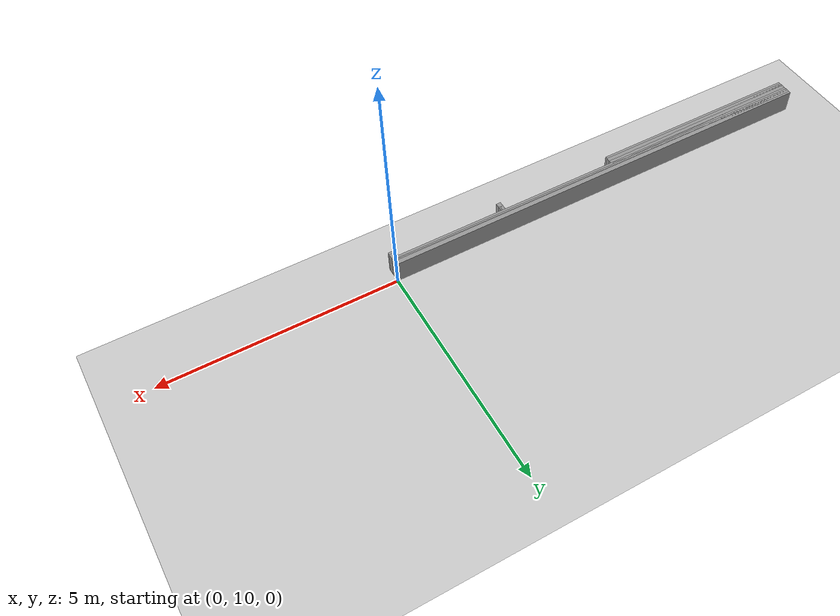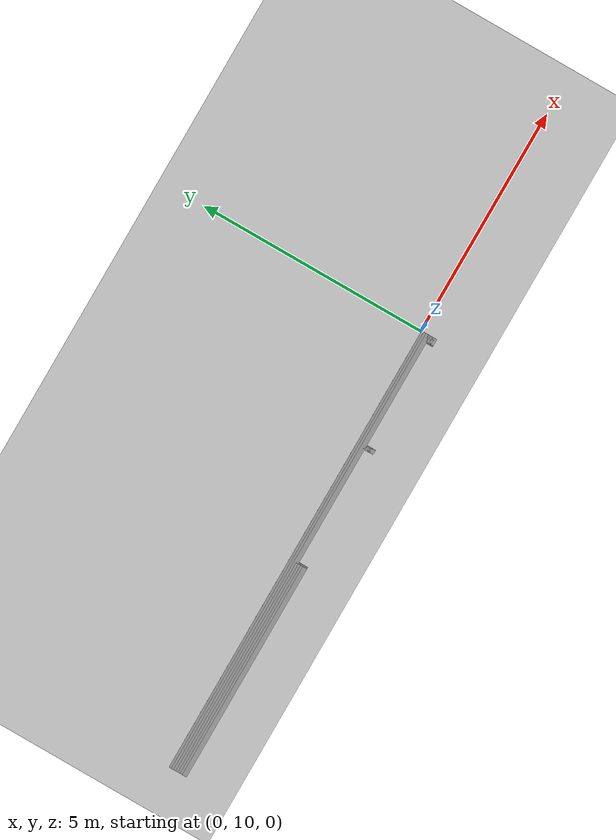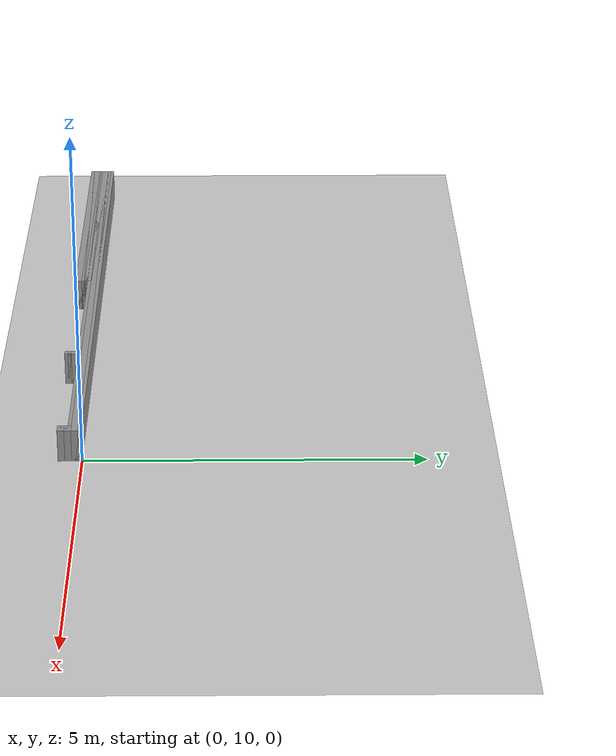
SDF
<sdf version="1.6">
 <world name="GridMap">
  <include><uri>model://sun</uri></include>
  <include><uri>model://ground_plane</uri></include>
  <model name="GridMap">
   <link name="Wall_(51.0,193.0)">
    <collision name="Wall_(51.0,193.0)_Collision">
     <geometry><box><size>0.1 0.1 0.5</size></box></geometry>
     <pose>-2.5500000000000003 9.65 0.25 0 -0 0</pose>
    </collision>
    <inertial>
     <mass>0.5</mass>
     <pose>0 0.01 0 0 0 0</pose>
     <inertia><ixx>0.004</ixx><ixy>0.001</ixy><ixz>0</ixz><iyy>0.006</iyy><iyz>0</iyz><izz>0.007</izz></inertia>
    </inertial>
    <visual name="Wall_(51.0,193.0)_Visual">
     <geometry><box><size>0.1 0.1 0.5</size></box></geometry>
     <pose>-2.5500000000000003 9.65 0.25 0 -0 0</pose>
     <material>
      <script><uri>file://media/materials/scripts/gazebo.material</uri><name>Gazebo/Grey</name></script>
      <ambient>1 1 1 1</ambient>
     </material>
     <meta><layer>0</layer></meta>
    </visual>
   </link>
   <link name="Wall_(151.5,193.0)">
    <collision name="Wall_(151.5,193.0)_Collision">
     <geometry><box><size>4.75 0.1 0.5</size></box></geometry>
     <pose>-7.575 9.65 0.25 0 -0 0</pose>
    </collision>
    <inertial>
     <mass>0.5</mass>
     <pose>0 0.01 0 0 0 0</pose>
     <inertia><ixx>0.004</ixx><ixy>0.001</ixy><ixz>0</ixz><iyy>0.006</iyy><iyz>0</iyz><izz>0.007</izz></inertia>
    </inertial>
    <visual name="Wall_(151.5,193.0)_Visual">
     <geometry><box><size>4.75 0.1 0.5</size></box></geometry>
     <pose>-7.575 9.65 0.25 0 -0 0</pose>
     <material>
      <script><uri>file://media/materials/scripts/gazebo.material</uri><name>Gazebo/Grey</name></script>
      <ambient>1 1 1 1</ambient>
     </material>
     <meta><layer>0</layer></meta>
    </visual>
   </link>
   <link name="Wall_(1.5,194.0)">
    <collision name="Wall_(1.5,194.0)_Collision">
     <geometry><box><size>0.15000000000000002 0.1 0.5</size></box></geometry>
     <pose>-0.07500000000000001 9.700000000000001 0.25 0 -0 0</pose>
    </collision>
    <inertial>
     <mass>0.5</mass>
     <pose>0 0.01 0 0 0 0</pose>
     <inertia><ixx>0.004</ixx><ixy>0.001</ixy><ixz>0</ixz><iyy>0.006</iyy><iyz>0</iyz><izz>0.007</izz></inertia>
    </inertial>
    <visual name="Wall_(1.5,194.0)_Visual">
     <geometry><box><size>0.15000000000000002 0.1 0.5</size></box></geometry>
     <pose>-0.07500000000000001 9.700000000000001 0.25 0 -0 0</pose>
     <material>
      <script><uri>file://media/materials/scripts/gazebo.material</uri><name>Gazebo/Grey</name></script>
      <ambient>1 1 1 1</ambient>
     </material>
     <meta><layer>0</layer></meta>
    </visual>
   </link>
   <link name="Wall_(51.0,194.0)">
    <collision name="Wall_(51.0,194.0)_Collision">
     <geometry><box><size>0.1 0.1 0.5</size></box></geometry>
     <pose>-2.5500000000000003 9.700000000000001 0.25 0 -0 0</pose>
    </collision>
    <inertial>
     <mass>0.5</mass>
     <pose>0 0.01 0 0 0 0</pose>
     <inertia><ixx>0.004</ixx><ixy>0.001</ixy><ixz>0</ixz><iyy>0.006</iyy><iyz>0</iyz><izz>0.007</izz></inertia>
    </inertial>
    <visual name="Wall_(51.0,194.0)_Visual">
     <geometry><box><size>0.1 0.1 0.5</size></box></geometry>
     <pose>-2.5500000000000003 9.700000000000001 0.25 0 -0 0</pose>
     <material>
      <script><uri>file://media/materials/scripts/gazebo.material</uri><name>Gazebo/Grey</name></script>
      <ambient>1 1 1 1</ambient>
     </material>
     <meta><layer>0</layer></meta>
    </visual>
   </link>
   <link name="Wall_(151.5,194.0)">
    <collision name="Wall_(151.5,194.0)_Collision">
     <geometry><box><size>4.75 0.1 0.5</size></box></geometry>
     <pose>-7.575 9.700000000000001 0.25 0 -0 0</pose>
    </collision>
    <inertial>
     <mass>0.5</mass>
     <pose>0 0.01 0 0 0 0</pose>
     <inertia><ixx>0.004</ixx><ixy>0.001</ixy><ixz>0</ixz><iyy>0.006</iyy><iyz>0</iyz><izz>0.007</izz></inertia>
    </inertial>
    <visual name="Wall_(151.5,194.0)_Visual">
     <geometry><box><size>4.75 0.1 0.5</size></box></geometry>
     <pose>-7.575 9.700000000000001 0.25 0 -0 0</pose>
     <material>
      <script><uri>file://media/materials/scripts/gazebo.material</uri><name>Gazebo/Grey</name></script>
      <ambient>1 1 1 1</ambient>
     </material>
     <meta><layer>0</layer></meta>
    </visual>
   </link>
   <link name="Wall_(1.5,195.0)">
    <collision name="Wall_(1.5,195.0)_Collision">
     <geometry><box><size>0.15000000000000002 0.1 0.5</size></box></geometry>
     <pose>-0.07500000000000001 9.75 0.25 0 -0 0</pose>
    </collision>
    <inertial>
     <mass>0.5</mass>
     <pose>0 0.01 0 0 0 0</pose>
     <inertia><ixx>0.004</ixx><ixy>0.001</ixy><ixz>0</ixz><iyy>0.006</iyy><iyz>0</iyz><izz>0.007</izz></inertia>
    </inertial>
    <visual name="Wall_(1.5,195.0)_Visual">
     <geometry><box><size>0.15000000000000002 0.1 0.5</size></box></geometry>
     <pose>-0.07500000000000001 9.75 0.25 0 -0 0</pose>
     <material>
      <script><uri>file://media/materials/scripts/gazebo.material</uri><name>Gazebo/Grey</name></script>
      <ambient>1 1 1 1</ambient>
     </material>
     <meta><layer>0</layer></meta>
    </visual>
   </link>
   <link name="Wall_(51.0,195.0)">
    <collision name="Wall_(51.0,195.0)_Collision">
     <geometry><box><size>0.1 0.1 0.5</size></box></geometry>
     <pose>-2.5500000000000003 9.75 0.25 0 -0 0</pose>
    </collision>
    <inertial>
     <mass>0.5</mass>
     <pose>0 0.01 0 0 0 0</pose>
     <inertia><ixx>0.004</ixx><ixy>0.001</ixy><ixz>0</ixz><iyy>0.006</iyy><iyz>0</iyz><izz>0.007</izz></inertia>
    </inertial>
    <visual name="Wall_(51.0,195.0)_Visual">
     <geometry><box><size>0.1 0.1 0.5</size></box></geometry>
     <pose>-2.5500000000000003 9.75 0.25 0 -0 0</pose>
     <material>
      <script><uri>file://media/materials/scripts/gazebo.material</uri><name>Gazebo/Grey</name></script>
      <ambient>1 1 1 1</ambient>
     </material>
     <meta><layer>0</layer></meta>
    </visual>
   </link>
   <link name="Wall_(151.5,195.0)">
    <collision name="Wall_(151.5,195.0)_Collision">
     <geometry><box><size>4.75 0.1 0.5</size></box></geometry>
     <pose>-7.575 9.75 0.25 0 -0 0</pose>
    </collision>
    <inertial>
     <mass>0.5</mass>
     <pose>0 0.01 0 0 0 0</pose>
     <inertia><ixx>0.004</ixx><ixy>0.001</ixy><ixz>0</ixz><iyy>0.006</iyy><iyz>0</iyz><izz>0.007</izz></inertia>
    </inertial>
    <visual name="Wall_(151.5,195.0)_Visual">
     <geometry><box><size>4.75 0.1 0.5</size></box></geometry>
     <pose>-7.575 9.75 0.25 0 -0 0</pose>
     <material>
      <script><uri>file://media/materials/scripts/gazebo.material</uri><name>Gazebo/Grey</name></script>
      <ambient>1 1 1 1</ambient>
     </material>
     <meta><layer>0</layer></meta>
    </visual>
   </link>
   <link name="Wall_(1.5,196.0)">
    <collision name="Wall_(1.5,196.0)_Collision">
     <geometry><box><size>0.15000000000000002 0.1 0.5</size></box></geometry>
     <pose>-0.07500000000000001 9.8 0.25 0 -0 0</pose>
    </collision>
    <inertial>
     <mass>0.5</mass>
     <pose>0 0.01 0 0 0 0</pose>
     <inertia><ixx>0.004</ixx><ixy>0.001</ixy><ixz>0</ixz><iyy>0.006</iyy><iyz>0</iyz><izz>0.007</izz></inertia>
    </inertial>
    <visual name="Wall_(1.5,196.0)_Visual">
     <geometry><box><size>0.15000000000000002 0.1 0.5</size></box></geometry>
     <pose>-0.07500000000000001 9.8 0.25 0 -0 0</pose>
     <material>
      <script><uri>file://media/materials/scripts/gazebo.material</uri><name>Gazebo/Grey</name></script>
      <ambient>1 1 1 1</ambient>
     </material>
     <meta><layer>0</layer></meta>
    </visual>
   </link>
   <link name="Wall_(51.0,196.0)">
    <collision name="Wall_(51.0,196.0)_Collision">
     <geometry><box><size>0.1 0.1 0.5</size></box></geometry>
     <pose>-2.5500000000000003 9.8 0.25 0 -0 0</pose>
    </collision>
    <inertial>
     <mass>0.5</mass>
     <pose>0 0.01 0 0 0 0</pose>
     <inertia><ixx>0.004</ixx><ixy>0.001</ixy><ixz>0</ixz><iyy>0.006</iyy><iyz>0</iyz><izz>0.007</izz></inertia>
    </inertial>
    <visual name="Wall_(51.0,196.0)_Visual">
     <geometry><box><size>0.1 0.1 0.5</size></box></geometry>
     <pose>-2.5500000000000003 9.8 0.25 0 -0 0</pose>
     <material>
      <script><uri>file://media/materials/scripts/gazebo.material</uri><name>Gazebo/Grey</name></script>
      <ambient>1 1 1 1</ambient>
     </material>
     <meta><layer>0</layer></meta>
    </visual>
   </link>
   <link name="Wall_(151.5,196.0)">
    <collision name="Wall_(151.5,196.0)_Collision">
     <geometry><box><size>4.75 0.1 0.5</size></box></geometry>
     <pose>-7.575 9.8 0.25 0 -0 0</pose>
    </collision>
    <inertial>
     <mass>0.5</mass>
     <pose>0 0.01 0 0 0 0</pose>
     <inertia><ixx>0.004</ixx><ixy>0.001</ixy><ixz>0</ixz><iyy>0.006</iyy><iyz>0</iyz><izz>0.007</izz></inertia>
    </inertial>
    <visual name="Wall_(151.5,196.0)_Visual">
     <geometry><box><size>4.75 0.1 0.5</size></box></geometry>
     <pose>-7.575 9.8 0.25 0 -0 0</pose>
     <material>
      <script><uri>file://media/materials/scripts/gazebo.material</uri><name>Gazebo/Grey</name></script>
      <ambient>1 1 1 1</ambient>
     </material>
     <meta><layer>0</layer></meta>
    </visual>
   </link>
   <link name="Wall_(99.5,197.0)">
    <collision name="Wall_(99.5,197.0)_Collision">
     <geometry><box><size>9.950000000000001 0.1 0.5</size></box></geometry>
     <pose>-4.9750000000000005 9.850000000000001 0.25 0 -0 0</pose>
    </collision>
    <inertial>
     <mass>0.5</mass>
     <pose>0 0.01 0 0 0 0</pose>
     <inertia><ixx>0.004</ixx><ixy>0.001</ixy><ixz>0</ixz><iyy>0.006</iyy><iyz>0</iyz><izz>0.007</izz></inertia>
    </inertial>
    <visual name="Wall_(99.5,197.0)_Visual">
     <geometry><box><size>9.950000000000001 0.1 0.5</size></box></geometry>
     <pose>-4.9750000000000005 9.850000000000001 0.25 0 -0 0</pose>
     <material>
      <script><uri>file://media/materials/scripts/gazebo.material</uri><name>Gazebo/Grey</name></script>
      <ambient>1 1 1 1</ambient>
     </material>
     <meta><layer>0</layer></meta>
    </visual>
   </link>
   <link name="Wall_(99.5,198.0)">
    <collision name="Wall_(99.5,198.0)_Collision">
     <geometry><box><size>9.950000000000001 0.1 0.5</size></box></geometry>
     <pose>-4.9750000000000005 9.9 0.25 0 -0 0</pose>
    </collision>
    <inertial>
     <mass>0.5</mass>
     <pose>0 0.01 0 0 0 0</pose>
     <inertia><ixx>0.004</ixx><ixy>0.001</ixy><ixz>0</ixz><iyy>0.006</iyy><iyz>0</iyz><izz>0.007</izz></inertia>
    </inertial>
    <visual name="Wall_(99.5,198.0)_Visual">
     <geometry><box><size>9.950000000000001 0.1 0.5</size></box></geometry>
     <pose>-4.9750000000000005 9.9 0.25 0 -0 0</pose>
     <material>
      <script><uri>file://media/materials/scripts/gazebo.material</uri><name>Gazebo/Grey</name></script>
      <ambient>1 1 1 1</ambient>
     </material>
     <meta><layer>0</layer></meta>
    </visual>
   </link>
   <link name="Wall_(99.5,199.0)">
    <collision name="Wall_(99.5,199.0)_Collision">
     <geometry><box><size>9.950000000000001 0.1 0.5</size></box></geometry>
     <pose>-4.9750000000000005 9.950000000000001 0.25 0 -0 0</pose>
    </collision>
    <inertial>
     <mass>0.5</mass>
     <pose>0 0.01 0 0 0 0</pose>
     <inertia><ixx>0.004</ixx><ixy>0.001</ixy><ixz>0</ixz><iyy>0.006</iyy><iyz>0</iyz><izz>0.007</izz></inertia>
    </inertial>
    <visual name="Wall_(99.5,199.0)_Visual">
     <geometry><box><size>9.950000000000001 0.1 0.5</size></box></geometry>
     <pose>-4.9750000000000005 9.950000000000001 0.25 0 -0 0</pose>
     <material>
      <script><uri>file://media/materials/scripts/gazebo.material</uri><name>Gazebo/Grey</name></script>
      <ambient>1 1 1 1</ambient>
     </material>
     <meta><layer>0</layer></meta>
    </visual>
   </link>
   <static>1</static>
  </model>
 </world>
</sdf>
